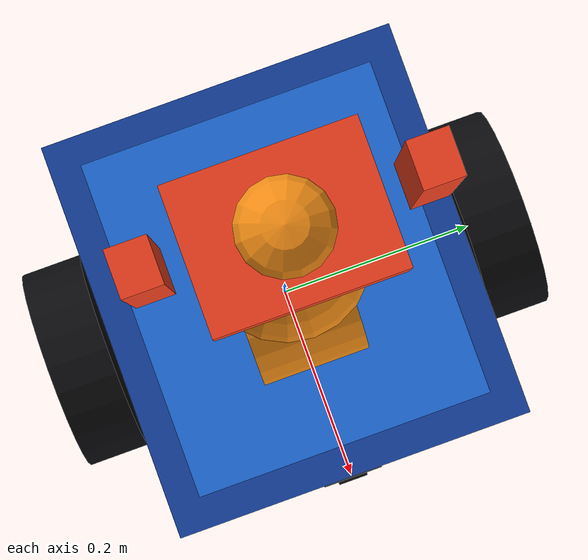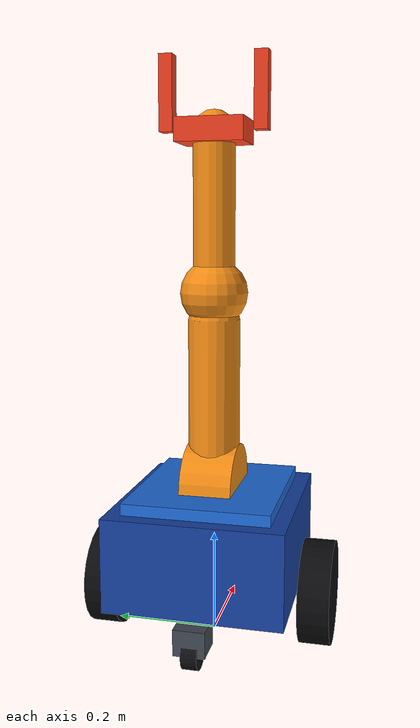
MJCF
<mujoco model="base_chassis">
  <!-- 差速小车底盘 —— 造型与真万向脚轮参照 mujoco-pzc/MuJoCo 的网球抓取小车,
       轮位拓扑用中置双驱动轮 + 前后万向脚轮: 滚转由双轮承担(驱动轮永不卸载),
       俯仰由前后脚轮承担. 高重心机械臂下这比"前驱+单后脚轮"稳定得多. -->
  <compiler angle="radian"/>

  <option impratio="10" integrator="implicitfast"/>

  <default>
    <default class="body_blue">
      <geom rgba="0.08 0.25 0.62 1"/>
    </default>
    <default class="plate_blue">
      <geom rgba="0.12 0.42 0.85 1"/>
    </default>
    <default class="drive_wheel">
      <joint armature="0.1" damping="0.05" frictionloss="0.05" axis="0 1 0"/>
      <geom size="0.1 0.03 0" type="cylinder" friction="1.2" solref="0.005" solimp="0.95 0.99" rgba="0.04 0.04 0.05 1"/>
    </default>
    <default class="arm_main">
      <joint armature="0.02" damping="0.5" frictionloss="0.05"/>
      <default class="arm_arm_orange">
        <geom rgba="0.95 0.55 0.08 1"/>
      </default>
    </default>
  </default>

  <worldbody>
    <body name="base" pos="0 0 0.1">
      <inertial pos="0 0 0.08" mass="55" diaginertia="1.2 1.5 0.9"/>
      <joint name="base_ref" type="free"/>
      <geom name="chassis" class="body_blue" size="0.19 0.17 0.09" pos="0 0 0.09" type="box"/>
      <geom name="top_plate" class="plate_blue" size="0.16 0.14 0.012" pos="0 0 0.19" type="box"/>
      <site name="arm_mount" pos="0 0 0.2" rgba="0 0 0 0"/>
      <camera name="front_cam" quat="0.612359 0.353576 -0.353576 -0.612359" pos="0.16 0 0.16" fovy="75"/>
      <body name="wheel_left" pos="0 0.21 0">
        <joint name="wheel_left_joint" class="drive_wheel"/>
        <geom name="wheel_left_geom" class="drive_wheel" quat="0.707105 0.707108 0 0" mass="2"/>
      </body>
      <body name="wheel_right" pos="0 -0.21 0">
        <joint name="wheel_right_joint" class="drive_wheel"/>
        <geom name="wheel_right_geom" class="drive_wheel" quat="0.707105 0.707108 0 0" mass="2"/>
      </body>
      <body name="caster_front" pos="0.17 0 -0.017">
        <joint name="caster_swivel_f" damping="0.3"/>
        <geom name="caster_fork_f" size="0.03 0.03 0.025" pos="0 0 -0.02" type="box" contype="0" conaffinity="0" rgba="0.25 0.28 0.32 1" mass="0.03"/>
        <body name="caster_wheel_f" pos="0 0 -0.045" quat="0.707107 -0.707107 0 0">
          <joint name="caster_roll_f" damping="0.01"/>
          <geom name="caster_wheel_f_geom" size="0.035 0.015" type="cylinder" contype="0" conaffinity="0" rgba="0.06 0.06 0.07 1" mass="0.02"/>
          <geom name="caster_ball_f_geom" size="0.035" condim="1" friction="0.001 0.001 0.001" solref="0.005" solimp="0.95 0.99" rgba="0.06 0.06 0.07 0" mass="0.08"/>
        </body>
      </body>
      <body name="caster_rear" pos="-0.17 0 -0.017">
        <joint name="caster_swivel_r" damping="0.3"/>
        <geom name="caster_fork_r" size="0.03 0.03 0.025" pos="0 0 -0.02" type="box" contype="0" conaffinity="0" rgba="0.25 0.28 0.32 1" mass="0.03"/>
        <body name="caster_wheel_r" pos="0 0 -0.045" quat="0.707107 -0.707107 0 0">
          <joint name="caster_roll_r" damping="0.01"/>
          <geom name="caster_wheel_r_geom" size="0.035 0.015" type="cylinder" contype="0" conaffinity="0" rgba="0.06 0.06 0.07 1" mass="0.02"/>
          <geom name="caster_ball_r_geom" size="0.035" condim="1" friction="0.001 0.001 0.001" solref="0.005" solimp="0.95 0.99" rgba="0.06 0.06 0.07 0" mass="0.08"/>
        </body>
      </body>
      <body name="arm_arm_base" pos="0 0 0.2">
        <joint name="arm_shoulder_joint" range="-0.3 2.2" armature="0.02" damping="0.5" frictionloss="0.05" axis="0 1 0"/>
        <geom name="arm_shoulder_motor" class="arm_arm_orange" size="0.085 0.05" quat="0.707105 0.707108 0 0" type="cylinder" mass="0.6"/>
        <body name="arm_upper_arm" pos="0 0 0.05">
          <geom name="arm_upper_link" class="arm_arm_orange" size="0.05 0.14" pos="0 0 0.14" quat="0 1 0 0" type="capsule" mass="0.5"/>
          <body name="arm_elbow" pos="0 0 0.33">
            <joint name="arm_elbow_joint" range="-2.8 2.6" armature="0.02" damping="0.5" frictionloss="0.05" axis="0 1 0"/>
            <geom name="arm_elbow_motor" class="arm_arm_orange" size="0.065" mass="0.4"/>
            <body name="arm_forearm" pos="0 0 0.05">
              <geom name="arm_forearm_link" class="arm_arm_orange" size="0.04 0.125" pos="0 0 0.125" quat="0 1 0 0" type="capsule" mass="0.3"/>
              <body name="arm_gripper_tip" pos="0 0 0.25">
                <geom name="arm_palm" size="0.05 0.065 0.022" type="box" rgba="0.95 0.25 0.12 1" mass="0.2"/>
                <site name="arm_gripper_tcp" size="0.006" pos="0 0 0.1" rgba="1 0 0 0"/>
                <body name="arm_left_finger" pos="0 0.09 0.01">
                  <joint name="arm_finger_slide" type="slide" range="0 0.05" armature="0.02" damping="0.5" frictionloss="0.05" axis="0 -1 0"/>
                  <geom name="arm_left_finger_geom" size="0.015 0.013 0.07" pos="0 0 0.06" type="box" friction="1 0.02 0.01" solref="0.01" solimp="0.9 0.95 0.01" rgba="0.95 0.25 0.12 1" mass="0.07"/>
                </body>
                <body name="arm_right_finger" pos="0 -0.09 0.01">
                  <geom name="arm_right_finger_geom" size="0.015 0.013 0.07" pos="0 0 0.06" type="box" friction="1 0.02 0.01" solref="0.01" solimp="0.9 0.95 0.01" rgba="0.95 0.25 0.12 1" mass="0.07"/>
                </body>
              </body>
            </body>
          </body>
        </body>
      </body>
    </body>
  </worldbody>

  <contact>
    <exclude body1="arm_upper_arm" body2="arm_forearm"/>
    <exclude body1="arm_upper_arm" body2="arm_gripper_tip"/>
    <exclude body1="arm_upper_arm" body2="arm_left_finger"/>
    <exclude body1="arm_upper_arm" body2="arm_right_finger"/>
  </contact>

  <actuator>
    <general name="wheel_left_vel" joint="wheel_left_joint" ctrlrange="-5 5" biastype="affine" gainprm="100" biasprm="0 0 -100"/>
    <general name="wheel_right_vel" joint="wheel_right_joint" ctrlrange="-5 5" biastype="affine" gainprm="100" biasprm="0 0 -100"/>
    <general name="arm_shoulder_servo" joint="arm_shoulder_joint" ctrlrange="-0.3 2.2" forcerange="-35 35" biastype="affine" gainprm="240" biasprm="0 -240 -24"/>
    <general name="arm_elbow_servo" joint="arm_elbow_joint" ctrlrange="-2.8 2.6" forcerange="-25 25" biastype="affine" gainprm="200" biasprm="0 -200 -20"/>
    <general name="arm_finger_servo" joint="arm_finger_slide" ctrlrange="0 0.05" forcerange="-10 10" biastype="affine" gainprm="90" biasprm="0 -90 -9"/>
  </actuator>
</mujoco>
